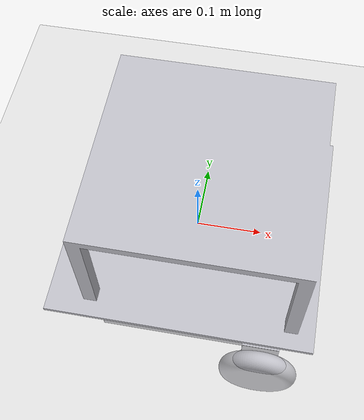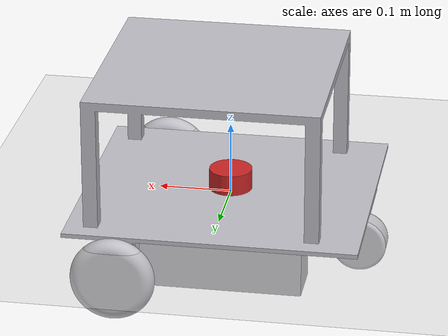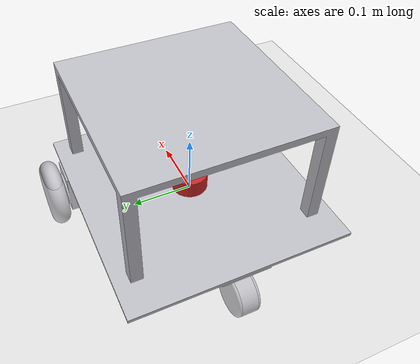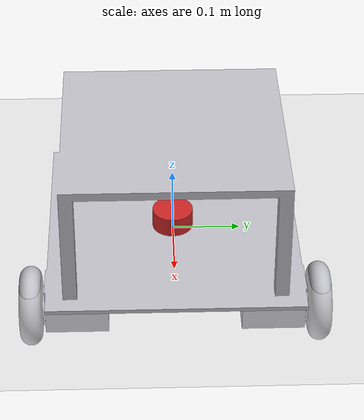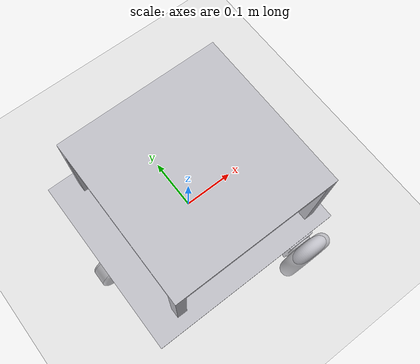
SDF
<sdf version="1.7">
 <world name="default">
  <light name="sun" type="directional">
   <pose>0 0 10 0 -0 0</pose>
   <diffuse>0.8 0.8 0.8 1</diffuse>
   <specular>0.2 0.2 0.2 1</specular>
   <attenuation>
    <range>1000</range>
    <constant>0.9</constant>
    <linear>0.01</linear>
    <quadratic>0.001</quadratic>
   </attenuation>
   <direction>-0.5 0.1 -0.9</direction>
   <spot><inner_angle>0</inner_angle><outer_angle>0</outer_angle><falloff>0</falloff></spot>
  </light>
  <model name="ground_plane">
   <static>1</static>
   <link name="link">
    <collision name="collision">
     <geometry><plane><normal>0 0 1</normal><size>100 100</size></plane></geometry>
     <surface>
      <contact><collide_bitmask>65535</collide_bitmask></contact>
      <friction><ode><mu>100</mu><mu2>50</mu2></ode></friction>
     </surface>
    </collision>
    <visual name="visual">
     <cast_shadows>0</cast_shadows>
     <geometry><plane><normal>0 0 1</normal><size>100 100</size></plane></geometry>
     <material>
      <script><uri>file://media/materials/scripts/gazebo.material</uri><name>Gazebo/Grey</name></script>
     </material>
    </visual>
   </link>
  </model>
  <gravity>0 0 -9.8</gravity>
  <magnetic_field>6e-06 2.3e-05 -4.2e-05</magnetic_field>
  <atmosphere type="adiabatic"/>
  <physics type="ode">
   <max_step_size>0.001</max_step_size>
   <real_time_factor>1</real_time_factor>
   <real_time_update_rate>1000</real_time_update_rate>
  </physics>
  <scene><ambient>0.4 0.4 0.4 1</ambient><background>0.7 0.7 0.7 1</background><shadows>1</shadows></scene>
  <audio><device>default</device></audio>
  <spherical_coordinates>
   <surface_model>EARTH_WGS84</surface_model>
   <latitude_deg>0</latitude_deg>
   <longitude_deg>0</longitude_deg>
   <elevation>0</elevation>
   <heading_deg>0</heading_deg>
  </spherical_coordinates>
  <model name="untitled">
   <link name="base_link">
    <inertial>
     <pose>0.016328 -4e-06 0.028206 0 -0 0</pose>
     <mass>41.1921</mass>
     <inertia>
      <ixx>0.964472</ixx>
      <ixy>-2.8e-05</ixy>
      <ixz>0.008696</ixz>
      <iyy>0.728351</iyy>
      <iyz>-5e-06</iyz>
      <izz>0.995113</izz>
     </inertia>
    </inertial>
    <collision name="base_link_collision">
     <geometry>
      <mesh>
       <scale>0.001 0.001 0.001</scale>
       <uri>file:///home/dohyeonse/crashlab/install/untitled_description/share/untitled_description/meshes/base_link.stl</uri>
      </mesh>
     </geometry>
     <surface><friction><ode><mu>0.2</mu><mu2>0.2</mu2></ode></friction></surface>
    </collision>
    <collision name="base_link_fixed_joint_lump__laser_frame_collision_1">
     <pose>0 0 0.02 0 -0 0</pose>
     <geometry><cylinder><length>0.03</length><radius>0.03</radius></cylinder></geometry>
    </collision>
    <visual name="base_link_visual">
     <geometry>
      <mesh>
       <scale>0.001 0.001 0.001</scale>
       <uri>file:///home/dohyeonse/crashlab/install/untitled_description/share/untitled_description/meshes/base_link.stl</uri>
      </mesh>
     </geometry>
     <material>
      <script><name>Gazebo/Silver</name><uri>file://media/materials/scripts/gazebo.material</uri></script>
     </material>
    </visual>
    <visual name="base_link_fixed_joint_lump__laser_frame_visual_1">
     <pose>0 0 0.02 0 -0 0</pose>
     <geometry><cylinder><length>0.03</length><radius>0.03</radius></cylinder></geometry>
     <material>
      <script><name>Gazebo/Red</name><uri>file://media/materials/scripts/gazebo.material</uri></script>
     </material>
    </visual>
    <self_collide>1</self_collide>
    <sensor name="laser" type="ray">
     <visualize>1</visualize>
     <update_rate>10</update_rate>
     <ray>
      <scan>
       <horizontal>
        <samples>360</samples>
        <min_angle>-3.14</min_angle>
        <max_angle>3.14</max_angle>
        <resolution>1</resolution>
       </horizontal>
       <vertical><samples>1</samples><min_angle>0</min_angle><max_angle>0</max_angle></vertical>
      </scan>
      <range><min>0.3</min><max>12</max></range>
     </ray>
     <plugin name="laser_controller" filename="libgazebo_ros_ray_sensor.so">
      <ros><argument>~/out:=scan</argument></ros>
      <output_type>sensor_msgs/LaserScan</output_type>
      <frame_name>laser_frame</frame_name>
     </plugin>
     <pose>0 0 0.02 0 -0 0</pose>
    </sensor>
   </link>
   <joint name="Revolute 3" type="revolute">
    <pose relative_to="base_link">0.125629 0.1931 -0.0435 0 -0 0</pose>
    <parent>base_link</parent>
    <child>Right_Wheel_1</child>
    <axis>
     <xyz>0 1 0</xyz>
     <limit><lower>-1e+16</lower><upper>1e+16</upper></limit>
     <dynamics><spring_reference>0</spring_reference><spring_stiffness>0</spring_stiffness></dynamics>
    </axis>
   </joint>
   <link name="Right_Wheel_1">
    <pose relative_to="Revolute 3">0 0 0 0 -0 0</pose>
    <inertial>
     <pose>0 0.0156 0 0 -0 0</pose>
     <mass>2.26568</mass>
     <inertia>
      <ixx>0.001857</ixx>
      <ixy>0</ixy>
      <ixz>0</ixz>
      <iyy>0.003387</iyy>
      <iyz>0</iyz>
      <izz>0.001857</izz>
     </inertia>
    </inertial>
    <collision name="Right_Wheel_1_collision">
     <pose>-0.125629 -0.1931 0.0435 0 -0 0</pose>
     <geometry>
      <mesh>
       <scale>0.001 0.001 0.001</scale>
       <uri>file:///home/dohyeonse/crashlab/install/untitled_description/share/untitled_description/meshes/Right_Wheel_1.stl</uri>
      </mesh>
     </geometry>
     <surface><friction><ode><mu>0.2</mu><mu2>0.2</mu2></ode></friction></surface>
    </collision>
    <visual name="Right_Wheel_1_visual">
     <pose>-0.125629 -0.1931 0.0435 0 -0 0</pose>
     <geometry>
      <mesh>
       <scale>0.001 0.001 0.001</scale>
       <uri>file:///home/dohyeonse/crashlab/install/untitled_description/share/untitled_description/meshes/Right_Wheel_1.stl</uri>
      </mesh>
     </geometry>
     <material>
      <script><name>Gazebo/Silver</name><uri>file://media/materials/scripts/gazebo.material</uri></script>
     </material>
    </visual>
    <self_collide>1</self_collide>
   </link>
   <joint name="Revolute 4" type="revolute">
    <pose relative_to="base_link">0.125629 -0.1931 -0.0435 0 -0 0</pose>
    <parent>base_link</parent>
    <child>Left_Wheel_1</child>
    <axis>
     <xyz>0 1 0</xyz>
     <limit><lower>-1e+16</lower><upper>1e+16</upper></limit>
     <dynamics><spring_reference>0</spring_reference><spring_stiffness>0</spring_stiffness></dynamics>
    </axis>
   </joint>
   <link name="Left_Wheel_1">
    <pose relative_to="Revolute 4">0 0 0 0 -0 0</pose>
    <inertial>
     <pose>0 -0.0156 0 0 -0 0</pose>
     <mass>2.26568</mass>
     <inertia>
      <ixx>0.001857</ixx>
      <ixy>0</ixy>
      <ixz>0</ixz>
      <iyy>0.003387</iyy>
      <iyz>0</iyz>
      <izz>0.001857</izz>
     </inertia>
    </inertial>
    <collision name="Left_Wheel_1_collision">
     <pose>-0.125629 0.1931 0.0435 0 -0 0</pose>
     <geometry>
      <mesh>
       <scale>0.001 0.001 0.001</scale>
       <uri>file:///home/dohyeonse/crashlab/install/untitled_description/share/untitled_description/meshes/Left_Wheel_1.stl</uri>
      </mesh>
     </geometry>
     <surface><friction><ode><mu>0.2</mu><mu2>0.2</mu2></ode></friction></surface>
    </collision>
    <visual name="Left_Wheel_1_visual">
     <pose>-0.125629 0.1931 0.0435 0 -0 0</pose>
     <geometry>
      <mesh>
       <scale>0.001 0.001 0.001</scale>
       <uri>file:///home/dohyeonse/crashlab/install/untitled_description/share/untitled_description/meshes/Left_Wheel_1.stl</uri>
      </mesh>
     </geometry>
     <material>
      <script><name>Gazebo/Silver</name><uri>file://media/materials/scripts/gazebo.material</uri></script>
     </material>
    </visual>
    <self_collide>1</self_collide>
   </link>
   <joint name="Revolute 6" type="revolute">
    <pose relative_to="base_link">-0.159 -0.001 -0.003 0 -0 0</pose>
    <parent>base_link</parent>
    <child>Caster_Wheel_out_1</child>
    <axis>
     <xyz>0 0 -1</xyz>
     <limit><lower>-1e+16</lower><upper>1e+16</upper></limit>
     <dynamics><spring_reference>0</spring_reference><spring_stiffness>0</spring_stiffness></dynamics>
    </axis>
   </joint>
   <link name="Caster_Wheel_out_1">
    <pose relative_to="Revolute 6">0 0 0 0 -0 0</pose>
    <inertial>
     <pose>-0.015503 0 -0.045188 0 -0 0</pose>
     <mass>0.486518</mass>
     <inertia>
      <ixx>0.000437</ixx>
      <ixy>0</ixy>
      <ixz>-0.000111</ixz>
      <iyy>0.000504</iyy>
      <iyz>0</iyz>
      <izz>0.000284</izz>
     </inertia>
    </inertial>
    <collision name="Caster_Wheel_out_1_collision">
     <pose>0.159 0.001 0.003 0 -0 0</pose>
     <geometry>
      <mesh>
       <scale>0.001 0.001 0.001</scale>
       <uri>file:///home/dohyeonse/crashlab/install/untitled_description/share/untitled_description/meshes/Caster_Wheel_out_1.stl</uri>
      </mesh>
     </geometry>
     <surface><friction><ode><mu>0.2</mu><mu2>0.2</mu2></ode></friction></surface>
    </collision>
    <visual name="Caster_Wheel_out_1_visual">
     <pose>0.159 0.001 0.003 0 -0 0</pose>
     <geometry>
      <mesh>
       <scale>0.001 0.001 0.001</scale>
       <uri>file:///home/dohyeonse/crashlab/install/untitled_description/share/untitled_description/meshes/Caster_Wheel_out_1.stl</uri>
      </mesh>
     </geometry>
     <material>
      <script><name>Gazebo/Silver</name><uri>file://media/materials/scripts/gazebo.material</uri></script>
     </material>
    </visual>
    <self_collide>1</self_collide>
   </link>
   <joint name="Revolute 5" type="revolute">
    <pose relative_to="Caster_Wheel_out_1">-0.023364 -0.014 -0.0595 0 -0 0</pose>
    <parent>Caster_Wheel_out_1</parent>
    <child>Caster_Wheel_1</child>
    <axis>
     <xyz>0 1 0</xyz>
     <limit><lower>-1e+16</lower><upper>1e+16</upper></limit>
     <dynamics><spring_reference>0</spring_reference><spring_stiffness>0</spring_stiffness></dynamics>
    </axis>
   </joint>
   <link name="Caster_Wheel_1">
    <pose relative_to="Revolute 5">0 0 0 0 -0 0</pose>
    <inertial>
     <pose>-0 0.014 -0 0 -0 0</pose>
     <mass>0.971047</mass>
     <inertia>
      <ixx>0.000405</ixx>
      <ixy>0</ixy>
      <ixz>0</ixz>
      <iyy>0.000683</iyy>
      <iyz>0</iyz>
      <izz>0.000405</izz>
     </inertia>
    </inertial>
    <collision name="Caster_Wheel_1_collision">
     <pose>0.182364 0.015 0.0625 0 -0 0</pose>
     <geometry>
      <mesh>
       <scale>0.001 0.001 0.001</scale>
       <uri>file:///home/dohyeonse/crashlab/install/untitled_description/share/untitled_description/meshes/Caster_Wheel_1.stl</uri>
      </mesh>
     </geometry>
     <surface><friction><ode><mu>0.2</mu><mu2>0.2</mu2></ode></friction></surface>
    </collision>
    <visual name="Caster_Wheel_1_visual">
     <pose>0.182364 0.015 0.0625 0 -0 0</pose>
     <geometry>
      <mesh>
       <scale>0.001 0.001 0.001</scale>
       <uri>file:///home/dohyeonse/crashlab/install/untitled_description/share/untitled_description/meshes/Caster_Wheel_1.stl</uri>
      </mesh>
     </geometry>
     <material>
      <script><name>Gazebo/Silver</name><uri>file://media/materials/scripts/gazebo.material</uri></script>
     </material>
    </visual>
    <self_collide>1</self_collide>
   </link>
   <plugin name="control" filename="libgazebo_ros_control.so"/>
   <static>0</static>
   <plugin name="diff_drive" filename="libgazebo_ros_diff_drive.so">
    <left_joint>Revolute 3</left_joint>
    <right_joint>Revolute 4</right_joint>
    <wheel_separation>0.5</wheel_separation>
    <wheel_diameter>0.1</wheel_diameter>
    <max_wheel_torque>200</max_wheel_torque>
    <max_wheel_acceleration>10.0</max_wheel_acceleration>
    <odometry_frame>odom</odometry_frame>
    <robot_base_frame>base_link</robot_base_frame>
    <publish_odom>1</publish_odom>
    <publish_odom_tf>1</publish_odom_tf>
    <publish_wheel_tf>1</publish_wheel_tf>
   </plugin>
  </model>
 </world>
</sdf>
